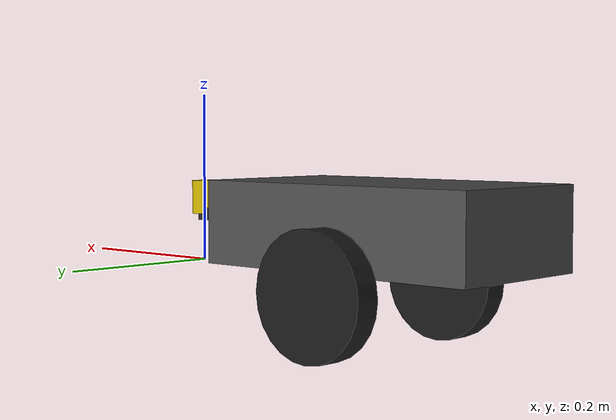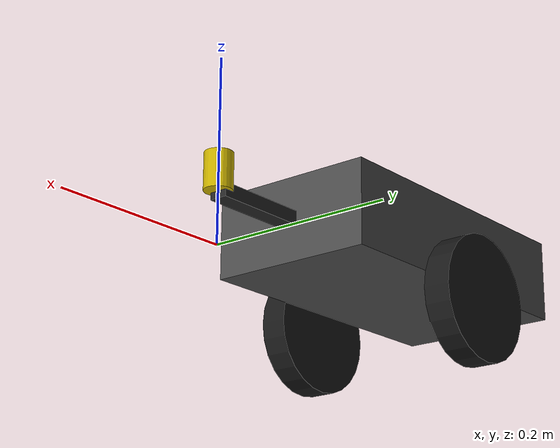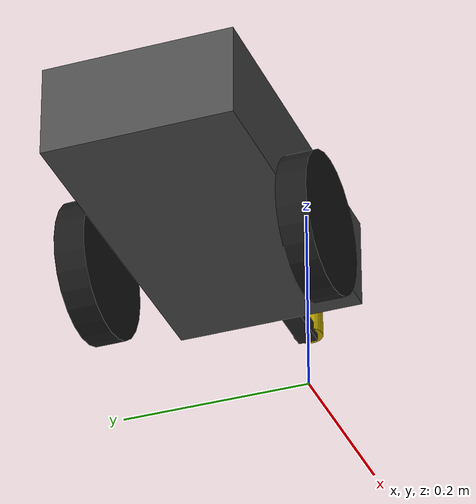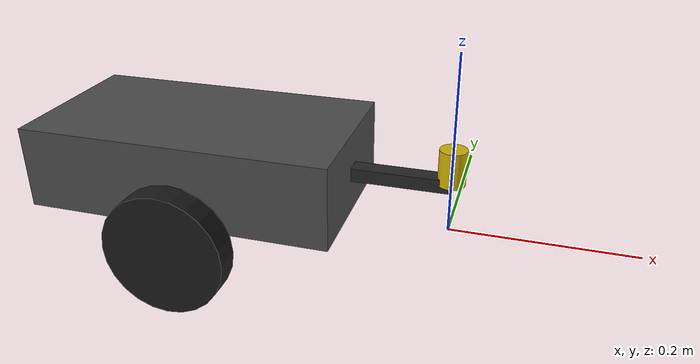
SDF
<?xml version="1.0"?>
<sdf version="1.8">
  <model name="trailer">
    <self_collide>false</self_collide>
    <static>false</static>

    <link name="trailer_base">
      <pose>-0.283 0 0.05612 0 0 0</pose>

      <inertial>
        <pose>0 0 0 0 0 0</pose>
        <!-- Massa total menos as 2 rodas: 4.0 - 2*0.334 = 3.332kg -->
        <mass>3.332</mass>
        <inertia>
          <ixx>0.02089</ixx>
          <ixy>0</ixy>
          <ixz>0</ixz>
          <iyy>0.04323</iyy>
          <iyz>0</iyz>
          <izz>0.05231</izz>
        </inertia>
      </inertial>

      <!-- Colisão do chassi -->
      <collision name="trailer_base_collision">
        <pose>0 0 0 0 0 0</pose>
        <geometry>
          <box>
            <size>0.350 0.1886 0.09284</size>
          </box>
        </geometry>
        <surface>
          <friction>
            <ode>
              <mu>0.5</mu>
              <mu2>0.5</mu2>
            </ode>
          </friction>
        </surface>
      </collision>

      <!-- Visual do chassi — cinza escuro -->
      <visual name="trailer_base_visual">
        <pose>0 0 0 0 0 0</pose>
        <geometry>
          <box>
            <size>0.350 0.1886 0.09284</size>
          </box>
        </geometry>
        <material>
          <ambient>0.3 0.3 0.3 1</ambient>
          <diffuse>0.3 0.3 0.3 1</diffuse>
          <specular>0.2 0.2 0.2 1</specular>
        </material>
      </visual>

      <!-- Visual do gancho — haste dianteira -->
      <visual name="trailer_hitch_bar_visual">
        <!-- Haste que vai do chassi até o ponto de engate -->
        <!-- comprimento = dist_gancho_eixo - comprimento_chassi/2 = 0.283 - 0.175 = 0.108m -->
        <pose>0.229 0 0 0 0 0</pose>
        <geometry>
          <box>
            <size>0.108 0.020 0.015</size>
          </box>
        </geometry>
        <material>
          <ambient>0.15 0.15 0.15 1</ambient>
          <diffuse>0.15 0.15 0.15 1</diffuse>
          <specular>0.1 0.1 0.1 1</specular>
        </material>
      </visual>

      <!-- Visual do pino de engate -->
      <visual name="trailer_hitch_pin_visual">
        <pose>0.283 0 0.020 0 0 0</pose>
        <geometry>
          <cylinder>
            <radius>0.015</radius>
            <length>0.040</length>
          </cylinder>
        </geometry>
        <material>
          <ambient>0.8 0.7 0.0 1</ambient>
          <diffuse>0.8 0.7 0.0 1</diffuse>
          <specular>0.5 0.4 0.0 1</specular>
        </material>
      </visual>

    </link>

    <link name="trailer_wheel_left">
      <pose>-0.283 0.110 -0.01030 0 0 0</pose>

      <inertial>
        <mass>0.334</mass>
        <inertia>
          <ixx>0.000584</ixx>
          <ixy>0</ixy>
          <ixz>0</ixz>
          <iyy>0.000584</iyy>
          <iyz>0</iyz>
          <izz>0.000818</izz>
        </inertia>
      </inertial>

      <gravity>true</gravity>

      <visual name="trailer_wheel_left_visual">
        <!-- Cilindro deitado no eixo Y -->
        <pose>0 0 0 1.5707 0 0</pose>
        <geometry>
          <cylinder>
            <radius>0.070</radius>
            <length>0.030</length>
          </cylinder>
        </geometry>
        <material>
          <ambient>0.1 0.1 0.1 1</ambient>
          <diffuse>0.1 0.1 0.1 1</diffuse>
          <specular>0.05 0.05 0.05 1</specular>
        </material>
      </visual>

      <collision name="trailer_wheel_left_collision">
        <pose>0 0 0 1.5707 0 0</pose>
        <geometry>
          <cylinder>
            <radius>0.070</radius>
            <length>0.030</length>
          </cylinder>
        </geometry>
        <surface>
          <friction>
            <ode>
              <mu>0.8</mu>
              <mu2>1.2</mu2>
              <fdir1>0 0 1</fdir1>
            </ode>
          </friction>
        </surface>
      </collision>
    </link>

    <!-- Junta da roda esquerda — gira livremente no eixo Y -->
    <joint name="trailer_wheel_left_joint" type="continuous">
      <parent>trailer_base</parent>
      <child>trailer_wheel_left</child>
      <pose>0 0 0 0 0 0</pose>
      <axis>
        <xyz>0 1 0</xyz>
        <limit>
          <lower>-1.79769e+308</lower>
          <upper>1.79769e+308</upper>
        </limit>
        <dynamics>
          <damping>0.01</damping>
          <friction>0.1</friction>
        </dynamics>
      </axis>
    </joint>

    <!-- ============================================================
         RODA DIREITA
         ============================================================ -->
    <link name="trailer_wheel_right">
      <pose>-0.283 -0.110 -0.01030 0 0 0</pose>

      <inertial>
        <mass>0.334</mass>
        <inertia>
          <ixx>0.000584</ixx>
          <ixy>0</ixy>
          <ixz>0</ixz>
          <iyy>0.000584</iyy>
          <iyz>0</iyz>
          <izz>0.000818</izz>
        </inertia>
      </inertial>

      <gravity>true</gravity>

      <visual name="trailer_wheel_right_visual">
        <pose>0 0 0 1.5707 0 0</pose>
        <geometry>
          <cylinder>
            <radius>0.070</radius>
            <length>0.030</length>
          </cylinder>
        </geometry>
        <material>
          <ambient>0.1 0.1 0.1 1</ambient>
          <diffuse>0.1 0.1 0.1 1</diffuse>
          <specular>0.05 0.05 0.05 1</specular>
        </material>
      </visual>

      <collision name="trailer_wheel_right_collision">
        <pose>0 0 0 1.5707 0 0</pose>
        <geometry>
          <cylinder>
            <radius>0.070</radius>
            <length>0.030</length>
          </cylinder>
        </geometry>
        <surface>
          <friction>
            <ode>
              <mu>0.8</mu>
              <mu2>1.2</mu2>
              <fdir1>0 0 1</fdir1>
            </ode>
          </friction>
        </surface>
      </collision>
    </link>

    <!-- Junta da roda direita — gira livremente no eixo Y -->
    <joint name="trailer_wheel_right_joint" type="continuous">
      <parent>trailer_base</parent>
      <child>trailer_wheel_right</child>
      <pose>0 0 0 0 0 0</pose>
      <axis>
        <xyz>0 1 0</xyz>
        <limit>
          <lower>-1.79769e+308</lower>
          <upper>1.79769e+308</upper>
        </limit>
        <dynamics>
          <damping>0.01</damping>
          <friction>0.1</friction>
        </dynamics>
      </axis>
    </joint>

  </model>
</sdf>
